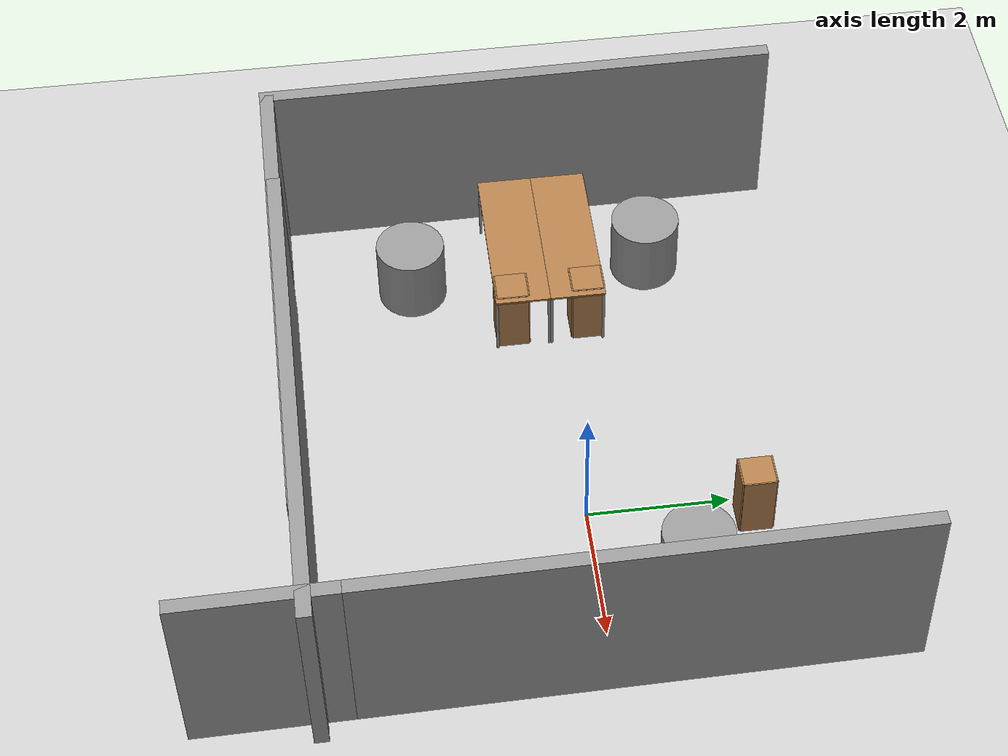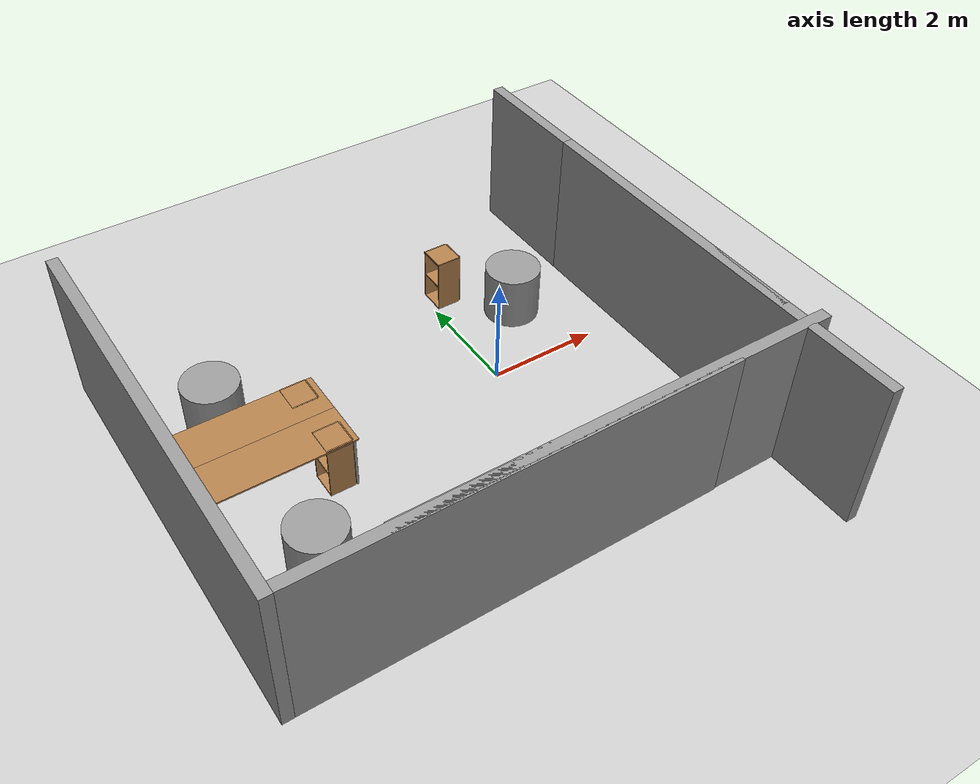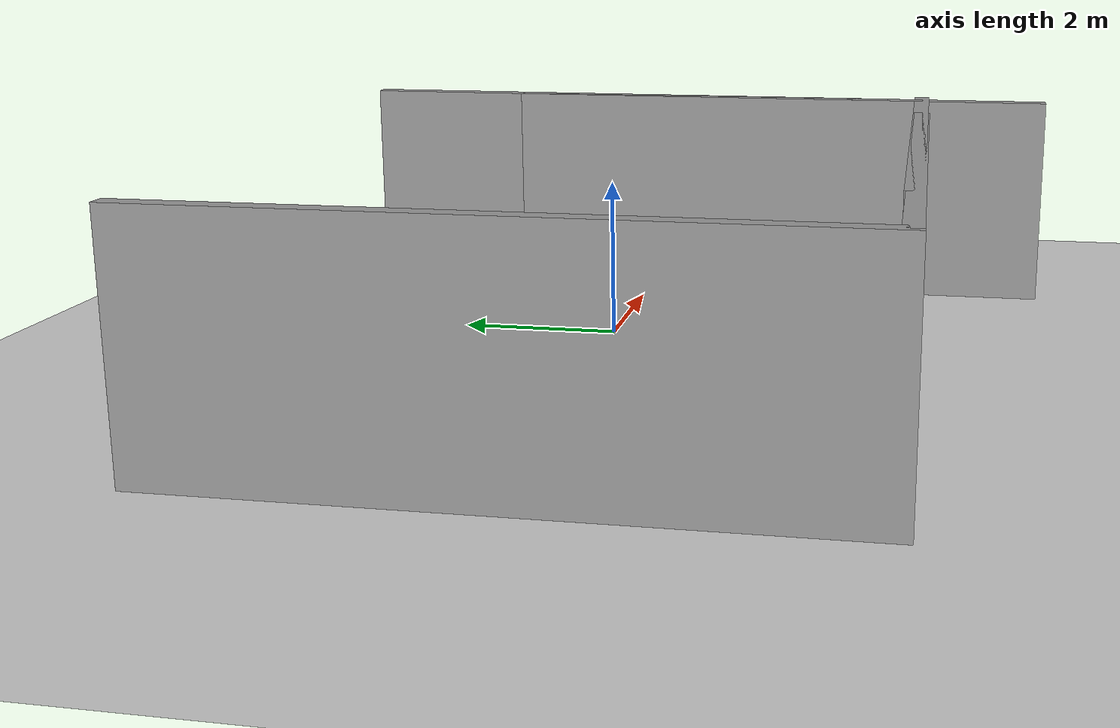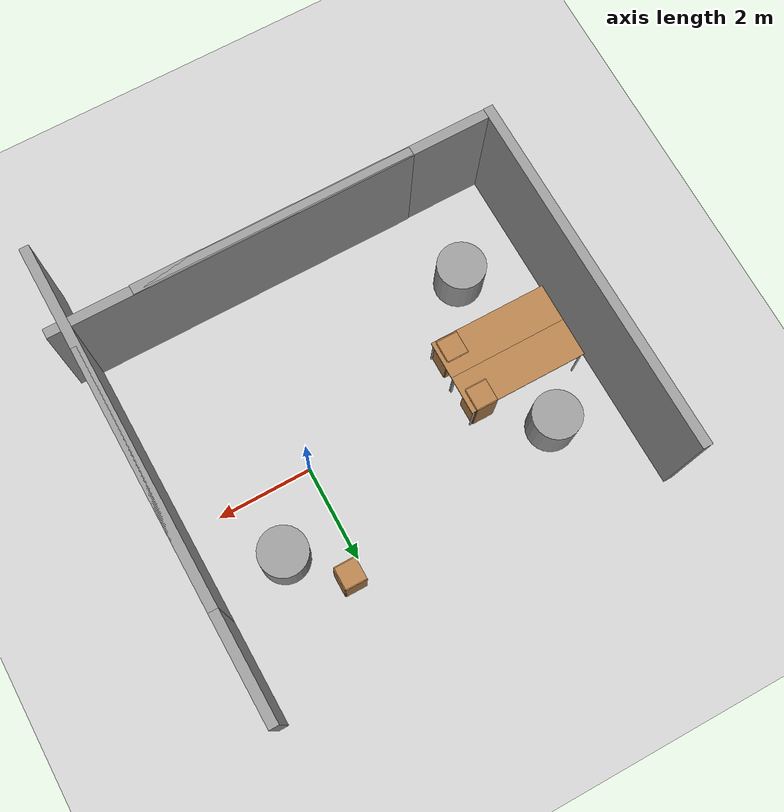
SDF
<sdf version="1.7">
 <world name="default">
  <model name="ground_plane">
   <static>1</static>
   <link name="link">
    <collision name="collision">
     <geometry><plane><normal>0 0 1</normal><size>100 100</size></plane></geometry>
     <surface><friction><ode><mu>100</mu><mu2>50</mu2></ode></friction></surface>
    </collision>
    <visual name="visual">
     <cast_shadows>0</cast_shadows>
     <geometry><plane><normal>0 0 1</normal><size>100 100</size></plane></geometry>
     <material>
      <script><uri>file://media/materials/scripts/gazebo.material</uri><name>Gazebo/Grey</name></script>
     </material>
    </visual>
   </link>
  </model>
  <model name="table_office">
   <link name="link">
    <pose>0 0 0 0 -0.001847 0</pose>
    <inertial>
     <mass>1</mass>
     <inertia><ixx>1</ixx><ixy>0</ixy><ixz>0</ixz><iyy>1</iyy><iyz>0</iyz><izz>1</izz></inertia>
    </inertial>
    <visual name="front_right_leg">
     <pose>1.18 -0.38 0.5 0 -0 0</pose>
     <geometry><cylinder><radius>0.02</radius><length>1</length></cylinder></geometry>
     <material>
      <script><uri>file://media/materials/scripts/gazebo.material</uri><name>Gazebo/Grey</name></script>
      <shader type="pixel"><normal_map>__default__</normal_map></shader>
      <ambient>0.3 0.3 0.3 1</ambient>
      <diffuse>0.7 0.7 0.7 1</diffuse>
      <specular>0.01 0.01 0.01 1</specular>
      <emissive>0 0 0 1</emissive>
     </material>
    </visual>
    <visual name="front_left_leg">
     <pose>1.18 0.38 0.5 0 -0 0</pose>
     <geometry><cylinder><radius>0.02</radius><length>1</length></cylinder></geometry>
     <material>
      <script><uri>file://media/materials/scripts/gazebo.material</uri><name>Gazebo/Grey</name></script>
      <shader type="pixel"><normal_map>__default__</normal_map></shader>
      <ambient>0.3 0.3 0.3 1</ambient>
      <diffuse>0.7 0.7 0.7 1</diffuse>
      <specular>0.01 0.01 0.01 1</specular>
      <emissive>0 0 0 1</emissive>
     </material>
    </visual>
    <visual name="back_right_leg">
     <pose>-1.18 -0.38 0.5 0 -0 0</pose>
     <geometry><cylinder><radius>0.02</radius><length>1</length></cylinder></geometry>
     <material>
      <script><uri>file://media/materials/scripts/gazebo.material</uri><name>Gazebo/Grey</name></script>
      <shader type="pixel"><normal_map>__default__</normal_map></shader>
      <ambient>0.3 0.3 0.3 1</ambient>
      <diffuse>0.7 0.7 0.7 1</diffuse>
      <specular>0.01 0.01 0.01 1</specular>
      <emissive>0 0 0 1</emissive>
     </material>
    </visual>
    <visual name="visual1">
     <pose>0 0 1 0 -0 0</pose>
     <geometry><box><size>2.5 0.8 0.03</size></box></geometry>
     <material>
      <script><uri>file://media/materials/scripts/gazebo.material</uri><name>Gazebo/Wood</name></script>
      <shader type="pixel"><normal_map>__default__</normal_map></shader>
      <ambient>1 1 1 1</ambient>
      <diffuse>1 1 1 1</diffuse>
      <specular>0.2 0.2 0.2 1</specular>
      <emissive>0 0 0 1</emissive>
     </material>
    </visual>
    <visual name="back_left_leg">
     <pose>-1.18 0.38 0.5 0 -0 0</pose>
     <geometry><cylinder><radius>0.02</radius><length>1</length></cylinder></geometry>
     <material>
      <script><uri>file://media/materials/scripts/gazebo.material</uri><name>Gazebo/Grey</name></script>
      <shader type="pixel"><normal_map>__default__</normal_map></shader>
      <ambient>0.3 0.3 0.3 1</ambient>
      <diffuse>0.7 0.7 0.7 1</diffuse>
      <specular>0.01 0.01 0.01 1</specular>
      <emissive>0 0 0 1</emissive>
     </material>
    </visual>
    <collision name="back_left_leg">
     <pose>-0.68 0.38 0.5 0 -0 0</pose>
     <geometry><cylinder><radius>0.02</radius><length>1</length></cylinder></geometry>
     <surface>
      <friction>
       <ode><mu>1</mu><mu2>1</mu2><fdir1>0 0 0</fdir1><slip1>0</slip1><slip2>0</slip2></ode>
       <torsional>
        <coefficient>1</coefficient>
        <patch_radius>0</patch_radius>
        <surface_radius>0</surface_radius>
        <use_patch_radius>1</use_patch_radius>
        <ode><slip>0</slip></ode>
       </torsional>
      </friction>
      <bounce><restitution_coefficient>0</restitution_coefficient><threshold>1e+06</threshold></bounce>
      <contact>
       <collide_without_contact>0</collide_without_contact>
       <collide_without_contact_bitmask>1</collide_without_contact_bitmask>
       <collide_bitmask>1</collide_bitmask>
       <ode>
        <soft_cfm>0</soft_cfm>
        <soft_erp>0.2</soft_erp>
        <kp>1e+13</kp>
        <kd>1</kd>
        <max_vel>0.01</max_vel>
        <min_depth>0</min_depth>
       </ode>
       <bullet>
        <split_impulse>1</split_impulse>
        <split_impulse_penetration_threshold>-0.01</split_impulse_penetration_threshold>
        <soft_cfm>0</soft_cfm>
        <soft_erp>0.2</soft_erp>
        <kp>1e+13</kp>
        <kd>1</kd>
       </bullet>
      </contact>
     </surface>
    </collision>
    <collision name="front_right_leg">
     <pose>0.68 -0.38 0.5 0 -0 0</pose>
     <geometry><cylinder><radius>0.02</radius><length>1</length></cylinder></geometry>
     <surface>
      <friction>
       <ode><mu>1</mu><mu2>1</mu2><fdir1>0 0 0</fdir1><slip1>0</slip1><slip2>0</slip2></ode>
       <torsional>
        <coefficient>1</coefficient>
        <patch_radius>0</patch_radius>
        <surface_radius>0</surface_radius>
        <use_patch_radius>1</use_patch_radius>
        <ode><slip>0</slip></ode>
       </torsional>
      </friction>
      <bounce><restitution_coefficient>0</restitution_coefficient><threshold>1e+06</threshold></bounce>
      <contact>
       <collide_without_contact>0</collide_without_contact>
       <collide_without_contact_bitmask>1</collide_without_contact_bitmask>
       <collide_bitmask>1</collide_bitmask>
       <ode>
        <soft_cfm>0</soft_cfm>
        <soft_erp>0.2</soft_erp>
        <kp>1e+13</kp>
        <kd>1</kd>
        <max_vel>0.01</max_vel>
        <min_depth>0</min_depth>
       </ode>
       <bullet>
        <split_impulse>1</split_impulse>
        <split_impulse_penetration_threshold>-0.01</split_impulse_penetration_threshold>
        <soft_cfm>0</soft_cfm>
        <soft_erp>0.2</soft_erp>
        <kp>1e+13</kp>
        <kd>1</kd>
       </bullet>
      </contact>
     </surface>
    </collision>
    <collision name="surface">
     <pose>0 0 1 0 -0 0</pose>
     <geometry><box><size>1.5 0.8 0.03</size></box></geometry>
     <surface>
      <friction>
       <ode><mu>0.6</mu><mu2>0.6</mu2><fdir1>0 0 0</fdir1><slip1>0</slip1><slip2>0</slip2></ode>
       <torsional>
        <coefficient>1</coefficient>
        <patch_radius>0</patch_radius>
        <surface_radius>0</surface_radius>
        <use_patch_radius>1</use_patch_radius>
        <ode><slip>0</slip></ode>
       </torsional>
      </friction>
      <bounce><restitution_coefficient>0</restitution_coefficient><threshold>1e+06</threshold></bounce>
      <contact>
       <collide_without_contact>0</collide_without_contact>
       <collide_without_contact_bitmask>1</collide_without_contact_bitmask>
       <collide_bitmask>1</collide_bitmask>
       <ode>
        <soft_cfm>0</soft_cfm>
        <soft_erp>0.2</soft_erp>
        <kp>1e+13</kp>
        <kd>1</kd>
        <max_vel>0.01</max_vel>
        <min_depth>0</min_depth>
       </ode>
       <bullet>
        <split_impulse>1</split_impulse>
        <split_impulse_penetration_threshold>-0.01</split_impulse_penetration_threshold>
        <soft_cfm>0</soft_cfm>
        <soft_erp>0.2</soft_erp>
        <kp>1e+13</kp>
        <kd>1</kd>
       </bullet>
      </contact>
     </surface>
    </collision>
    <collision name="back_right_leg">
     <pose>-0.68 -0.38 0.5 0 -0 0</pose>
     <geometry><cylinder><radius>0.02</radius><length>1</length></cylinder></geometry>
     <surface>
      <friction>
       <ode><mu>1</mu><mu2>1</mu2><fdir1>0 0 0</fdir1><slip1>0</slip1><slip2>0</slip2></ode>
       <torsional>
        <coefficient>1</coefficient>
        <patch_radius>0</patch_radius>
        <surface_radius>0</surface_radius>
        <use_patch_radius>1</use_patch_radius>
        <ode><slip>0</slip></ode>
       </torsional>
      </friction>
      <bounce><restitution_coefficient>0</restitution_coefficient><threshold>1e+06</threshold></bounce>
      <contact>
       <collide_without_contact>0</collide_without_contact>
       <collide_without_contact_bitmask>1</collide_without_contact_bitmask>
       <collide_bitmask>1</collide_bitmask>
       <ode>
        <soft_cfm>0</soft_cfm>
        <soft_erp>0.2</soft_erp>
        <kp>1e+13</kp>
        <kd>1</kd>
        <max_vel>0.01</max_vel>
        <min_depth>0</min_depth>
       </ode>
       <bullet>
        <split_impulse>1</split_impulse>
        <split_impulse_penetration_threshold>-0.01</split_impulse_penetration_threshold>
        <soft_cfm>0</soft_cfm>
        <soft_erp>0.2</soft_erp>
        <kp>1e+13</kp>
        <kd>1</kd>
       </bullet>
      </contact>
     </surface>
    </collision>
    <collision name="front_left_leg">
     <pose>0.68 0.38 0.5 0 -0 0</pose>
     <geometry><cylinder><radius>0.02</radius><length>1</length></cylinder></geometry>
     <surface>
      <friction>
       <ode><mu>1</mu><mu2>1</mu2><fdir1>0 0 0</fdir1><slip1>0</slip1><slip2>0</slip2></ode>
       <torsional>
        <coefficient>1</coefficient>
        <patch_radius>0</patch_radius>
        <surface_radius>0</surface_radius>
        <use_patch_radius>1</use_patch_radius>
        <ode><slip>0</slip></ode>
       </torsional>
      </friction>
      <bounce><restitution_coefficient>0</restitution_coefficient><threshold>1e+06</threshold></bounce>
      <contact>
       <collide_without_contact>0</collide_without_contact>
       <collide_without_contact_bitmask>1</collide_without_contact_bitmask>
       <collide_bitmask>1</collide_bitmask>
       <ode>
        <soft_cfm>0</soft_cfm>
        <soft_erp>0.2</soft_erp>
        <kp>1e+13</kp>
        <kd>1</kd>
        <max_vel>0.01</max_vel>
        <min_depth>0</min_depth>
       </ode>
       <bullet>
        <split_impulse>1</split_impulse>
        <split_impulse_penetration_threshold>-0.01</split_impulse_penetration_threshold>
        <soft_cfm>0</soft_cfm>
        <soft_erp>0.2</soft_erp>
        <kp>1e+13</kp>
        <kd>1</kd>
       </bullet>
      </contact>
     </surface>
    </collision>
   </link>
   <static>1</static>
   <pose>-4.41652 -0.486154 0 0 -0 0</pose>
  </model>
  <model name="table_office_clone">
   <link name="link">
    <pose>0 0 0 0 -0.001847 0</pose>
    <inertial>
     <mass>1</mass>
     <inertia><ixx>1</ixx><ixy>0</ixy><ixz>0</ixz><iyy>1</iyy><iyz>0</iyz><izz>1</izz></inertia>
    </inertial>
    <visual name="front_right_leg">
     <pose>1.18 -0.38 0.5 0 -0 0</pose>
     <geometry><cylinder><radius>0.02</radius><length>1</length></cylinder></geometry>
     <material>
      <script><uri>file://media/materials/scripts/gazebo.material</uri><name>Gazebo/Grey</name></script>
      <shader type="pixel"><normal_map>__default__</normal_map></shader>
      <ambient>0.3 0.3 0.3 1</ambient>
      <diffuse>0.7 0.7 0.7 1</diffuse>
      <specular>0.01 0.01 0.01 1</specular>
      <emissive>0 0 0 1</emissive>
     </material>
    </visual>
    <visual name="front_left_leg">
     <pose>1.18 0.38 0.5 0 -0 0</pose>
     <geometry><cylinder><radius>0.02</radius><length>1</length></cylinder></geometry>
     <material>
      <script><uri>file://media/materials/scripts/gazebo.material</uri><name>Gazebo/Grey</name></script>
      <shader type="pixel"><normal_map>__default__</normal_map></shader>
      <ambient>0.3 0.3 0.3 1</ambient>
      <diffuse>0.7 0.7 0.7 1</diffuse>
      <specular>0.01 0.01 0.01 1</specular>
      <emissive>0 0 0 1</emissive>
     </material>
    </visual>
    <visual name="back_right_leg">
     <pose>-1.18 -0.38 0.5 0 -0 0</pose>
     <geometry><cylinder><radius>0.02</radius><length>1</length></cylinder></geometry>
     <material>
      <script><uri>file://media/materials/scripts/gazebo.material</uri><name>Gazebo/Grey</name></script>
      <shader type="pixel"><normal_map>__default__</normal_map></shader>
      <ambient>0.3 0.3 0.3 1</ambient>
      <diffuse>0.7 0.7 0.7 1</diffuse>
      <specular>0.01 0.01 0.01 1</specular>
      <emissive>0 0 0 1</emissive>
     </material>
    </visual>
    <visual name="visual1">
     <pose>0 0 1 0 -0 0</pose>
     <geometry><box><size>2.5 0.8 0.03</size></box></geometry>
     <material>
      <script><uri>file://media/materials/scripts/gazebo.material</uri><name>Gazebo/Wood</name></script>
      <shader type="pixel"><normal_map>__default__</normal_map></shader>
      <ambient>1 1 1 1</ambient>
      <diffuse>1 1 1 1</diffuse>
      <specular>0.2 0.2 0.2 1</specular>
      <emissive>0 0 0 1</emissive>
     </material>
    </visual>
    <visual name="back_left_leg">
     <pose>-1.18 0.38 0.5 0 -0 0</pose>
     <geometry><cylinder><radius>0.02</radius><length>1</length></cylinder></geometry>
     <material>
      <script><uri>file://media/materials/scripts/gazebo.material</uri><name>Gazebo/Grey</name></script>
      <shader type="pixel"><normal_map>__default__</normal_map></shader>
      <ambient>0.3 0.3 0.3 1</ambient>
      <diffuse>0.7 0.7 0.7 1</diffuse>
      <specular>0.01 0.01 0.01 1</specular>
      <emissive>0 0 0 1</emissive>
     </material>
    </visual>
    <collision name="back_left_leg">
     <pose>-0.68 0.38 0.5 0 -0 0</pose>
     <geometry><cylinder><radius>0.02</radius><length>1</length></cylinder></geometry>
     <surface>
      <friction>
       <ode><mu>1</mu><mu2>1</mu2><fdir1>0 0 0</fdir1><slip1>0</slip1><slip2>0</slip2></ode>
       <torsional>
        <coefficient>1</coefficient>
        <patch_radius>0</patch_radius>
        <surface_radius>0</surface_radius>
        <use_patch_radius>1</use_patch_radius>
        <ode><slip>0</slip></ode>
       </torsional>
      </friction>
      <bounce><restitution_coefficient>0</restitution_coefficient><threshold>1e+06</threshold></bounce>
      <contact>
       <collide_without_contact>0</collide_without_contact>
       <collide_without_contact_bitmask>1</collide_without_contact_bitmask>
       <collide_bitmask>1</collide_bitmask>
       <ode>
        <soft_cfm>0</soft_cfm>
        <soft_erp>0.2</soft_erp>
        <kp>1e+13</kp>
        <kd>1</kd>
        <max_vel>0.01</max_vel>
        <min_depth>0</min_depth>
       </ode>
       <bullet>
        <split_impulse>1</split_impulse>
        <split_impulse_penetration_threshold>-0.01</split_impulse_penetration_threshold>
        <soft_cfm>0</soft_cfm>
        <soft_erp>0.2</soft_erp>
        <kp>1e+13</kp>
        <kd>1</kd>
       </bullet>
      </contact>
     </surface>
    </collision>
    <collision name="front_right_leg">
     <pose>0.68 -0.38 0.5 0 -0 0</pose>
     <geometry><cylinder><radius>0.02</radius><length>1</length></cylinder></geometry>
     <surface>
      <friction>
       <ode><mu>1</mu><mu2>1</mu2><fdir1>0 0 0</fdir1><slip1>0</slip1><slip2>0</slip2></ode>
       <torsional>
        <coefficient>1</coefficient>
        <patch_radius>0</patch_radius>
        <surface_radius>0</surface_radius>
        <use_patch_radius>1</use_patch_radius>
        <ode><slip>0</slip></ode>
       </torsional>
      </friction>
      <bounce><restitution_coefficient>0</restitution_coefficient><threshold>1e+06</threshold></bounce>
      <contact>
       <collide_without_contact>0</collide_without_contact>
       <collide_without_contact_bitmask>1</collide_without_contact_bitmask>
       <collide_bitmask>1</collide_bitmask>
       <ode>
        <soft_cfm>0</soft_cfm>
        <soft_erp>0.2</soft_erp>
        <kp>1e+13</kp>
        <kd>1</kd>
        <max_vel>0.01</max_vel>
        <min_depth>0</min_depth>
       </ode>
       <bullet>
        <split_impulse>1</split_impulse>
        <split_impulse_penetration_threshold>-0.01</split_impulse_penetration_threshold>
        <soft_cfm>0</soft_cfm>
        <soft_erp>0.2</soft_erp>
        <kp>1e+13</kp>
        <kd>1</kd>
       </bullet>
      </contact>
     </surface>
    </collision>
    <collision name="surface">
     <pose>0 0 1 0 -0 0</pose>
     <geometry><box><size>1.5 0.8 0.03</size></box></geometry>
     <surface>
      <friction>
       <ode><mu>0.6</mu><mu2>0.6</mu2><fdir1>0 0 0</fdir1><slip1>0</slip1><slip2>0</slip2></ode>
       <torsional>
        <coefficient>1</coefficient>
        <patch_radius>0</patch_radius>
        <surface_radius>0</surface_radius>
        <use_patch_radius>1</use_patch_radius>
        <ode><slip>0</slip></ode>
       </torsional>
      </friction>
      <bounce><restitution_coefficient>0</restitution_coefficient><threshold>1e+06</threshold></bounce>
      <contact>
       <collide_without_contact>0</collide_without_contact>
       <collide_without_contact_bitmask>1</collide_without_contact_bitmask>
       <collide_bitmask>1</collide_bitmask>
       <ode>
        <soft_cfm>0</soft_cfm>
        <soft_erp>0.2</soft_erp>
        <kp>1e+13</kp>
        <kd>1</kd>
        <max_vel>0.01</max_vel>
        <min_depth>0</min_depth>
       </ode>
       <bullet>
        <split_impulse>1</split_impulse>
        <split_impulse_penetration_threshold>-0.01</split_impulse_penetration_threshold>
        <soft_cfm>0</soft_cfm>
        <soft_erp>0.2</soft_erp>
        <kp>1e+13</kp>
        <kd>1</kd>
       </bullet>
      </contact>
     </surface>
    </collision>
    <collision name="back_right_leg">
     <pose>-0.68 -0.38 0.5 0 -0 0</pose>
     <geometry><cylinder><radius>0.02</radius><length>1</length></cylinder></geometry>
     <surface>
      <friction>
       <ode><mu>1</mu><mu2>1</mu2><fdir1>0 0 0</fdir1><slip1>0</slip1><slip2>0</slip2></ode>
       <torsional>
        <coefficient>1</coefficient>
        <patch_radius>0</patch_radius>
        <surface_radius>0</surface_radius>
        <use_patch_radius>1</use_patch_radius>
        <ode><slip>0</slip></ode>
       </torsional>
      </friction>
      <bounce><restitution_coefficient>0</restitution_coefficient><threshold>1e+06</threshold></bounce>
      <contact>
       <collide_without_contact>0</collide_without_contact>
       <collide_without_contact_bitmask>1</collide_without_contact_bitmask>
       <collide_bitmask>1</collide_bitmask>
       <ode>
        <soft_cfm>0</soft_cfm>
        <soft_erp>0.2</soft_erp>
        <kp>1e+13</kp>
        <kd>1</kd>
        <max_vel>0.01</max_vel>
        <min_depth>0</min_depth>
       </ode>
       <bullet>
        <split_impulse>1</split_impulse>
        <split_impulse_penetration_threshold>-0.01</split_impulse_penetration_threshold>
        <soft_cfm>0</soft_cfm>
        <soft_erp>0.2</soft_erp>
        <kp>1e+13</kp>
        <kd>1</kd>
       </bullet>
      </contact>
     </surface>
    </collision>
    <collision name="front_left_leg">
     <pose>0.68 0.38 0.5 0 -0 0</pose>
     <geometry><cylinder><radius>0.02</radius><length>1</length></cylinder></geometry>
     <surface>
      <friction>
       <ode><mu>1</mu><mu2>1</mu2><fdir1>0 0 0</fdir1><slip1>0</slip1><slip2>0</slip2></ode>
       <torsional>
        <coefficient>1</coefficient>
        <patch_radius>0</patch_radius>
        <surface_radius>0</surface_radius>
        <use_patch_radius>1</use_patch_radius>
        <ode><slip>0</slip></ode>
       </torsional>
      </friction>
      <bounce><restitution_coefficient>0</restitution_coefficient><threshold>1e+06</threshold></bounce>
      <contact>
       <collide_without_contact>0</collide_without_contact>
       <collide_without_contact_bitmask>1</collide_without_contact_bitmask>
       <collide_bitmask>1</collide_bitmask>
       <ode>
        <soft_cfm>0</soft_cfm>
        <soft_erp>0.2</soft_erp>
        <kp>1e+13</kp>
        <kd>1</kd>
        <max_vel>0.01</max_vel>
        <min_depth>0</min_depth>
       </ode>
       <bullet>
        <split_impulse>1</split_impulse>
        <split_impulse_penetration_threshold>-0.01</split_impulse_penetration_threshold>
        <soft_cfm>0</soft_cfm>
        <soft_erp>0.2</soft_erp>
        <kp>1e+13</kp>
        <kd>1</kd>
       </bullet>
      </contact>
     </surface>
    </collision>
   </link>
   <static>1</static>
   <pose>-4.41737 0.311441 0 0 -0 0</pose>
  </model>
  <model name="cabinet">
   <static>1</static>
   <link name="cabinet_bottom_plate">
    <inertial>
     <pose>0 0 -1 0 -0 0</pose>
     <inertia><ixx>2.05</ixx><ixy>0</ixy><ixz>0</ixz><iyy>2.05</iyy><iyz>0</iyz><izz>2.05</izz></inertia>
     <mass>25</mass>
    </inertial>
    <collision name="cabinet_bottom_plate_geom">
     <pose>0 0 0.01 0 -0 0</pose>
     <geometry><box><size>0.45 0.45 0.02</size></box></geometry>
    </collision>
    <visual name="cabinet_bottom_plate_geom_visual">
     <pose>0 0 0.01 0 -0 0</pose>
     <geometry><box><size>0.45 0.45 0.02</size></box></geometry>
     <material>
      <script><uri>file://media/materials/scripts/gazebo.material</uri><name>Gazebo/Wood</name></script>
     </material>
    </visual>
    <collision name="cabinet_bottom_plate_geom_cabinet_back_plate">
     <pose>0.235 0 0.51 0 -0 0</pose>
     <geometry><box><size>0.02 0.45 1.02</size></box></geometry>
    </collision>
    <visual name="cabinet_bottom_plate_geom_cabinet_back_plate_visual">
     <pose>0.235 0 0.51 0 -0 0</pose>
     <geometry><box><size>0.02 0.45 1.02</size></box></geometry>
     <material>
      <script><uri>file://media/materials/scripts/gazebo.material</uri><name>Gazebo/Wood</name></script>
     </material>
    </visual>
    <collision name="cabinet_bottom_plate_geom_cabinet_left_plate">
     <pose>0 0.235 0.51 0 -0 0</pose>
     <geometry><box><size>0.45 0.02 1.02</size></box></geometry>
    </collision>
    <visual name="cabinet_bottom_plate_geom_cabinet_left_plate_visual">
     <pose>0 0.235 0.51 0 -0 0</pose>
     <geometry><box><size>0.45 0.02 1.02</size></box></geometry>
     <material>
      <script><uri>file://media/materials/scripts/gazebo.material</uri><name>Gazebo/Wood</name></script>
     </material>
    </visual>
    <collision name="cabinet_bottom_plate_geom_cabinet_middle_plate">
     <pose>0 0 0.51 0 -0 0</pose>
     <geometry><box><size>0.45 0.45 0.02</size></box></geometry>
    </collision>
    <visual name="cabinet_bottom_plate_geom_cabinet_middle_plate_visual">
     <pose>0 0 0.51 0 -0 0</pose>
     <geometry><box><size>0.45 0.45 0.02</size></box></geometry>
     <material>
      <script><uri>file://media/materials/scripts/gazebo.material</uri><name>Gazebo/Wood</name></script>
     </material>
    </visual>
    <collision name="cabinet_bottom_plate_geom_cabinet_right_plate">
     <pose>0 -0.235 0.51 0 -0 0</pose>
     <geometry><box><size>0.45 0.02 1.02</size></box></geometry>
    </collision>
    <visual name="cabinet_bottom_plate_geom_cabinet_right_plate_visual">
     <pose>0 -0.235 0.51 0 -0 0</pose>
     <geometry><box><size>0.45 0.02 1.02</size></box></geometry>
     <material>
      <script><uri>file://media/materials/scripts/gazebo.material</uri><name>Gazebo/Wood</name></script>
     </material>
    </visual>
    <collision name="cabinet_bottom_plate_geom_cabinet_top_plate">
     <pose>0 0 1.01 0 -0 0</pose>
     <geometry><box><size>0.45 0.45 0.02</size></box></geometry>
    </collision>
    <visual name="cabinet_bottom_plate_geom_cabinet_top_plate_visual">
     <pose>0 0 1.01 0 -0 0</pose>
     <geometry><box><size>0.45 0.45 0.02</size></box></geometry>
     <material>
      <script><uri>file://media/materials/scripts/gazebo.material</uri><name>Gazebo/Wood</name></script>
     </material>
    </visual>
   </link>
   <pose>-3.49554 -0.628517 0 0 -0 0</pose>
  </model>
  <model name="cabinet_clone">
   <static>1</static>
   <link name="cabinet_bottom_plate">
    <inertial>
     <pose>0 0 -1 0 -0 0</pose>
     <inertia><ixx>2.05</ixx><ixy>0</ixy><ixz>0</ixz><iyy>2.05</iyy><iyz>0</iyz><izz>2.05</izz></inertia>
     <mass>25</mass>
    </inertial>
    <collision name="cabinet_bottom_plate_geom">
     <pose>0 0 0.01 0 -0 0</pose>
     <geometry><box><size>0.45 0.45 0.02</size></box></geometry>
    </collision>
    <visual name="cabinet_bottom_plate_geom_visual">
     <pose>0 0 0.01 0 -0 0</pose>
     <geometry><box><size>0.45 0.45 0.02</size></box></geometry>
     <material>
      <script><uri>file://media/materials/scripts/gazebo.material</uri><name>Gazebo/Wood</name></script>
     </material>
    </visual>
    <collision name="cabinet_bottom_plate_geom_cabinet_back_plate">
     <pose>0.235 0 0.51 0 -0 0</pose>
     <geometry><box><size>0.02 0.45 1.02</size></box></geometry>
    </collision>
    <visual name="cabinet_bottom_plate_geom_cabinet_back_plate_visual">
     <pose>0.235 0 0.51 0 -0 0</pose>
     <geometry><box><size>0.02 0.45 1.02</size></box></geometry>
     <material>
      <script><uri>file://media/materials/scripts/gazebo.material</uri><name>Gazebo/Wood</name></script>
     </material>
    </visual>
    <collision name="cabinet_bottom_plate_geom_cabinet_left_plate">
     <pose>0 0.235 0.51 0 -0 0</pose>
     <geometry><box><size>0.45 0.02 1.02</size></box></geometry>
    </collision>
    <visual name="cabinet_bottom_plate_geom_cabinet_left_plate_visual">
     <pose>0 0.235 0.51 0 -0 0</pose>
     <geometry><box><size>0.45 0.02 1.02</size></box></geometry>
     <material>
      <script><uri>file://media/materials/scripts/gazebo.material</uri><name>Gazebo/Wood</name></script>
     </material>
    </visual>
    <collision name="cabinet_bottom_plate_geom_cabinet_middle_plate">
     <pose>0 0 0.51 0 -0 0</pose>
     <geometry><box><size>0.45 0.45 0.02</size></box></geometry>
    </collision>
    <visual name="cabinet_bottom_plate_geom_cabinet_middle_plate_visual">
     <pose>0 0 0.51 0 -0 0</pose>
     <geometry><box><size>0.45 0.45 0.02</size></box></geometry>
     <material>
      <script><uri>file://media/materials/scripts/gazebo.material</uri><name>Gazebo/Wood</name></script>
     </material>
    </visual>
    <collision name="cabinet_bottom_plate_geom_cabinet_right_plate">
     <pose>0 -0.235 0.51 0 -0 0</pose>
     <geometry><box><size>0.45 0.02 1.02</size></box></geometry>
    </collision>
    <visual name="cabinet_bottom_plate_geom_cabinet_right_plate_visual">
     <pose>0 -0.235 0.51 0 -0 0</pose>
     <geometry><box><size>0.45 0.02 1.02</size></box></geometry>
     <material>
      <script><uri>file://media/materials/scripts/gazebo.material</uri><name>Gazebo/Wood</name></script>
     </material>
    </visual>
    <collision name="cabinet_bottom_plate_geom_cabinet_top_plate">
     <pose>0 0 1.01 0 -0 0</pose>
     <geometry><box><size>0.45 0.45 0.02</size></box></geometry>
    </collision>
    <visual name="cabinet_bottom_plate_geom_cabinet_top_plate_visual">
     <pose>0 0 1.01 0 -0 0</pose>
     <geometry><box><size>0.45 0.45 0.02</size></box></geometry>
     <material>
      <script><uri>file://media/materials/scripts/gazebo.material</uri><name>Gazebo/Wood</name></script>
     </material>
    </visual>
   </link>
   <pose>-3.51117 0.473279 0 0 -0 0</pose>
  </model>
  <model name="cabinet_clone_0">
   <static>1</static>
   <link name="cabinet_bottom_plate">
    <inertial>
     <pose>0 0 -1 0 -0 0</pose>
     <inertia><ixx>2.05</ixx><ixy>0</ixy><ixz>0</ixz><iyy>2.05</iyy><iyz>0</iyz><izz>2.05</izz></inertia>
     <mass>25</mass>
    </inertial>
    <collision name="cabinet_bottom_plate_geom">
     <pose>0 0 0.01 0 -0 0</pose>
     <geometry><box><size>0.45 0.45 0.02</size></box></geometry>
    </collision>
    <visual name="cabinet_bottom_plate_geom_visual">
     <pose>0 0 0.01 0 -0 0</pose>
     <geometry><box><size>0.45 0.45 0.02</size></box></geometry>
     <material>
      <script><uri>file://media/materials/scripts/gazebo.material</uri><name>Gazebo/Wood</name></script>
     </material>
    </visual>
    <collision name="cabinet_bottom_plate_geom_cabinet_back_plate">
     <pose>0.235 0 0.51 0 -0 0</pose>
     <geometry><box><size>0.02 0.45 1.02</size></box></geometry>
    </collision>
    <visual name="cabinet_bottom_plate_geom_cabinet_back_plate_visual">
     <pose>0.235 0 0.51 0 -0 0</pose>
     <geometry><box><size>0.02 0.45 1.02</size></box></geometry>
     <material>
      <script><uri>file://media/materials/scripts/gazebo.material</uri><name>Gazebo/Wood</name></script>
     </material>
    </visual>
    <collision name="cabinet_bottom_plate_geom_cabinet_left_plate">
     <pose>0 0.235 0.51 0 -0 0</pose>
     <geometry><box><size>0.45 0.02 1.02</size></box></geometry>
    </collision>
    <visual name="cabinet_bottom_plate_geom_cabinet_left_plate_visual">
     <pose>0 0.235 0.51 0 -0 0</pose>
     <geometry><box><size>0.45 0.02 1.02</size></box></geometry>
     <material>
      <script><uri>file://media/materials/scripts/gazebo.material</uri><name>Gazebo/Wood</name></script>
     </material>
    </visual>
    <collision name="cabinet_bottom_plate_geom_cabinet_middle_plate">
     <pose>0 0 0.51 0 -0 0</pose>
     <geometry><box><size>0.45 0.45 0.02</size></box></geometry>
    </collision>
    <visual name="cabinet_bottom_plate_geom_cabinet_middle_plate_visual">
     <pose>0 0 0.51 0 -0 0</pose>
     <geometry><box><size>0.45 0.45 0.02</size></box></geometry>
     <material>
      <script><uri>file://media/materials/scripts/gazebo.material</uri><name>Gazebo/Wood</name></script>
     </material>
    </visual>
    <collision name="cabinet_bottom_plate_geom_cabinet_right_plate">
     <pose>0 -0.235 0.51 0 -0 0</pose>
     <geometry><box><size>0.45 0.02 1.02</size></box></geometry>
    </collision>
    <visual name="cabinet_bottom_plate_geom_cabinet_right_plate_visual">
     <pose>0 -0.235 0.51 0 -0 0</pose>
     <geometry><box><size>0.45 0.02 1.02</size></box></geometry>
     <material>
      <script><uri>file://media/materials/scripts/gazebo.material</uri><name>Gazebo/Wood</name></script>
     </material>
    </visual>
    <collision name="cabinet_bottom_plate_geom_cabinet_top_plate">
     <pose>0 0 1.01 0 -0 0</pose>
     <geometry><box><size>0.45 0.45 0.02</size></box></geometry>
    </collision>
    <visual name="cabinet_bottom_plate_geom_cabinet_top_plate_visual">
     <pose>0 0 1.01 0 -0 0</pose>
     <geometry><box><size>0.45 0.45 0.02</size></box></geometry>
     <material>
      <script><uri>file://media/materials/scripts/gazebo.material</uri><name>Gazebo/Wood</name></script>
     </material>
    </visual>
   </link>
   <pose>0.316273 2.28269 0 0 -0 0</pose>
  </model>
  <model name="grey_wall">
   <static>1</static>
   <link name="link">
    <pose>0 0 1.4 0 -0 0</pose>
    <collision name="collision"><geometry><box><size>7.5 0.2 2.8</size></box></geometry></collision>
    <visual name="visual">
     <cast_shadows>0</cast_shadows>
     <geometry><box><size>7.5 0.2 2.8</size></box></geometry>
     <material>
      <script>
       <uri>model://grey_wall/materials/scripts</uri>
       <uri>model://grey_wall/materials/textures</uri>
       <name>vrc/grey_wall</name>
      </script>
     </material>
    </visual>
   </link>
   <pose>-2.28836 -3.87744 0 0 -0 0</pose>
  </model>
  <model name="grey_wall_clone_clone">
   <static>1</static>
   <link name="link">
    <pose>0 0 1.4 0 -0 0</pose>
    <collision name="collision"><geometry><box><size>7.5 0.2 2.8</size></box></geometry></collision>
    <visual name="visual">
     <cast_shadows>0</cast_shadows>
     <geometry><box><size>7.5 0.2 2.8</size></box></geometry>
     <material>
      <script>
       <uri>model://grey_wall/materials/scripts</uri>
       <uri>model://grey_wall/materials/textures</uri>
       <name>vrc/grey_wall</name>
      </script>
     </material>
    </visual>
   </link>
   <pose>-6.05515 -0.231036 0 0 0 -1.56025</pose>
  </model>
  <model name="grey_wall_clone_clone_clone">
   <static>1</static>
   <link name="link">
    <pose>0 0 1.4 0 -0 0</pose>
    <collision name="collision"><geometry><box><size>7.5 0.2 2.8</size></box></geometry></collision>
    <visual name="visual">
     <cast_shadows>0</cast_shadows>
     <geometry><box><size>7.5 0.2 2.8</size></box></geometry>
     <material>
      <script>
       <uri>model://grey_wall/materials/scripts</uri>
       <uri>model://grey_wall/materials/textures</uri>
       <name>vrc/grey_wall</name>
      </script>
     </material>
    </visual>
   </link>
   <pose>2.75736 0.360964 0 0 0 -1.56025</pose>
  </model>
  <model name="grey_wall_clone">
   <static>1</static>
   <link name="link">
    <pose>0 0 1.4 0 -0 0</pose>
    <collision name="collision"><geometry><box><size>7.5 0.2 2.8</size></box></geometry></collision>
    <visual name="visual">
     <cast_shadows>0</cast_shadows>
     <geometry><box><size>7.5 0.2 2.8</size></box></geometry>
     <material>
      <script>
       <uri>model://grey_wall/materials/scripts</uri>
       <uri>model://grey_wall/materials/textures</uri>
       <name>vrc/grey_wall</name>
      </script>
     </material>
    </visual>
   </link>
   <pose>-0.563596 -3.86116 0 0 -0 0</pose>
  </model>
  <model name="grey_wall_clone_clone_clone_clone">
   <static>1</static>
   <link name="link">
    <pose>0 0 1.4 0 -0 0</pose>
    <collision name="collision"><geometry><box><size>7.5 0.2 2.8</size></box></geometry></collision>
    <visual name="visual">
     <cast_shadows>0</cast_shadows>
     <geometry><box><size>7.5 0.2 2.8</size></box></geometry>
     <material>
      <script>
       <uri>model://grey_wall/materials/scripts</uri>
       <uri>model://grey_wall/materials/textures</uri>
       <name>vrc/grey_wall</name>
      </script>
     </material>
    </visual>
   </link>
   <pose>2.78009 -1.81239 0 0 0 -1.56025</pose>
  </model>
  <model name="unit_cylinder">
   <pose>-4.4989 -2.01228 0.499997 3e-06 4e-06 -0</pose>
   <link name="link">
    <inertial>
     <mass>1</mass>
     <inertia><ixx>0.145833</ixx><ixy>0</ixy><ixz>0</ixz><iyy>0.145833</iyy><iyz>0</iyz><izz>0.125</izz></inertia>
    </inertial>
    <collision name="collision">
     <geometry><cylinder><radius>0.5</radius><length>1</length></cylinder></geometry>
    </collision>
    <visual name="visual">
     <geometry><cylinder><radius>0.5</radius><length>1</length></cylinder></geometry>
     <material>
      <script><name>Gazebo/Grey</name><uri>file://media/materials/scripts/gazebo.material</uri></script>
     </material>
    </visual>
   </link>
  </model>
  <model name="unit_cylinder_clone">
   <pose>-4.59441 1.50164 0.499993 -3e-06 -3e-06 0</pose>
   <link name="link">
    <inertial>
     <mass>1</mass>
     <inertia><ixx>0.145833</ixx><ixy>0</ixy><ixz>0</ixz><iyy>0.145833</iyy><iyz>0</iyz><izz>0.125</izz></inertia>
    </inertial>
    <collision name="collision">
     <geometry><cylinder><radius>0.5</radius><length>1</length></cylinder></geometry>
    </collision>
    <visual name="visual">
     <geometry><cylinder><radius>0.5</radius><length>1</length></cylinder></geometry>
     <material>
      <script><name>Gazebo/Grey</name><uri>file://media/materials/scripts/gazebo.material</uri></script>
     </material>
    </visual>
   </link>
  </model>
  <model name="unit_cylinder_clone_0">
   <pose>1.22317 1.3263 0.499993 -3e-06 -4e-06 -0</pose>
   <link name="link">
    <inertial>
     <mass>1</mass>
     <inertia><ixx>0.145833</ixx><ixy>0</ixy><ixz>0</ixz><iyy>0.145833</iyy><iyz>0</iyz><izz>0.125</izz></inertia>
    </inertial>
    <collision name="collision">
     <geometry><cylinder><radius>0.5</radius><length>1</length></cylinder></geometry>
    </collision>
    <visual name="visual">
     <geometry><cylinder><radius>0.5</radius><length>1</length></cylinder></geometry>
     <material>
      <script><name>Gazebo/Grey</name><uri>file://media/materials/scripts/gazebo.material</uri></script>
     </material>
    </visual>
   </link>
  </model>
 </world>
</sdf>
